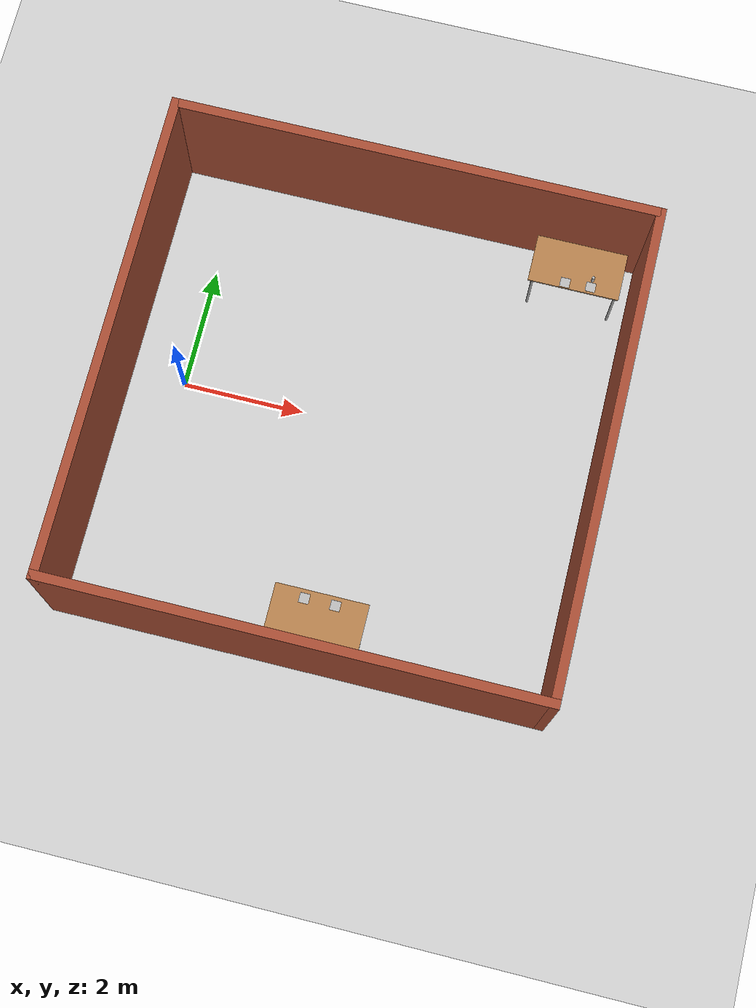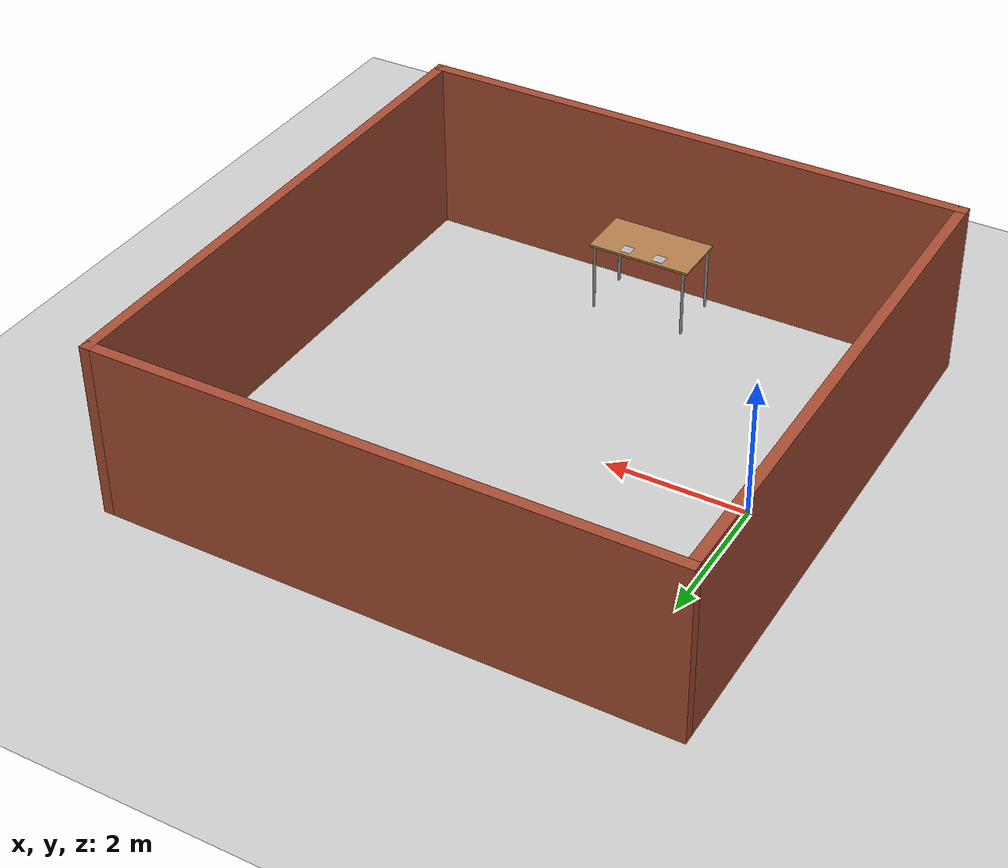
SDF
<sdf version="1.7">
 <world name="default">
  <light name="sun" type="directional">
   <pose>0 0 10 0 -0 0</pose>
   <diffuse>0.8 0.8 0.8 1</diffuse>
   <specular>0.2 0.2 0.2 1</specular>
   <attenuation>
    <range>1000</range>
    <constant>0.9</constant>
    <linear>0.01</linear>
    <quadratic>0.001</quadratic>
   </attenuation>
   <direction>-0.5 0.1 -0.9</direction>
   <spot><inner_angle>0</inner_angle><outer_angle>0</outer_angle><falloff>0</falloff></spot>
  </light>
  <model name="ground_plane">
   <static>1</static>
   <link name="link">
    <collision name="collision">
     <geometry><plane><normal>0 0 1</normal><size>100 100</size></plane></geometry>
     <surface>
      <contact><collide_bitmask>65535</collide_bitmask></contact>
      <friction><ode><mu>100</mu><mu2>50</mu2></ode></friction>
     </surface>
    </collision>
    <visual name="visual">
     <cast_shadows>0</cast_shadows>
     <geometry><plane><normal>0 0 1</normal><size>100 100</size></plane></geometry>
     <material>
      <script><uri>file://media/materials/scripts/gazebo.material</uri><name>Gazebo/Grey</name></script>
     </material>
    </visual>
   </link>
  </model>
  <gravity>0 0 -9.8</gravity>
  <magnetic_field>6e-06 2.3e-05 -4.2e-05</magnetic_field>
  <atmosphere type="adiabatic"/>
  <physics type="ode">
   <max_step_size>0.001</max_step_size>
   <real_time_factor>1</real_time_factor>
   <real_time_update_rate>1000</real_time_update_rate>
  </physics>
  <scene><ambient>0.4 0.4 0.4 1</ambient><background>0.7 0.7 0.7 1</background><shadows>1</shadows></scene>
  <spherical_coordinates>
   <surface_model>EARTH_WGS84</surface_model>
   <latitude_deg>0</latitude_deg>
   <longitude_deg>0</longitude_deg>
   <elevation>0</elevation>
   <heading_deg>0</heading_deg>
  </spherical_coordinates>
  <model name="room">
   <pose>3.0203 -0.137858 0 0 -0 0</pose>
   <link name="Wall_0">
    <collision name="Wall_0_Collision">
     <geometry><box><size>8 0.15 2.5</size></box></geometry>
     <pose>0 0 1.25 0 -0 0</pose>
    </collision>
    <visual name="Wall_0_Visual">
     <pose>0 0 1.25 0 -0 0</pose>
     <geometry><box><size>8 0.15 2.5</size></box></geometry>
     <material>
      <script><uri>file://media/materials/scripts/gazebo.material</uri><name>Gazebo/Bricks</name></script>
      <ambient>1 1 1 1</ambient>
     </material>
     <meta><layer>0</layer></meta>
    </visual>
    <pose>-3.99558 -0 0 0 -0 -1.5708</pose>
   </link>
   <link name="Wall_1">
    <collision name="Wall_1_Collision">
     <geometry><box><size>8 0.15 2.5</size></box></geometry>
     <pose>0 0 1.25 0 -0 0</pose>
    </collision>
    <visual name="Wall_1_Visual">
     <pose>0 0 1.25 0 -0 0</pose>
     <geometry><box><size>8 0.15 2.5</size></box></geometry>
     <material>
      <script><uri>file://media/materials/scripts/gazebo.material</uri><name>Gazebo/Bricks</name></script>
      <ambient>1 1 1 1</ambient>
     </material>
     <meta><layer>0</layer></meta>
    </visual>
    <pose>-0.07058 -3.925 0 0 -0 0</pose>
   </link>
   <link name="Wall_2">
    <collision name="Wall_2_Collision">
     <geometry><box><size>8 0.15 2.5</size></box></geometry>
     <pose>0 0 1.25 0 -0 0</pose>
    </collision>
    <visual name="Wall_2_Visual">
     <pose>0 0 1.25 0 -0 0</pose>
     <geometry><box><size>8 0.15 2.5</size></box></geometry>
     <material>
      <script><uri>file://media/materials/scripts/gazebo.material</uri><name>Gazebo/Bricks</name></script>
      <ambient>1 1 1 1</ambient>
     </material>
     <meta><layer>0</layer></meta>
    </visual>
    <pose>3.85442 -0 0 0 -0 1.5708</pose>
   </link>
   <link name="Wall_3">
    <collision name="Wall_3_Collision">
     <geometry><box><size>8 0.15 2.5</size></box></geometry>
     <pose>0 0 1.25 0 -0 0</pose>
    </collision>
    <visual name="Wall_3_Visual">
     <pose>0 0 1.25 0 -0 0</pose>
     <geometry><box><size>8 0.15 2.5</size></box></geometry>
     <material>
      <script><uri>file://media/materials/scripts/gazebo.material</uri><name>Gazebo/Bricks</name></script>
      <ambient>1 1 1 1</ambient>
     </material>
     <meta><layer>0</layer></meta>
    </visual>
    <pose>-0.07058 3.925 0 0 -0 3.14159</pose>
   </link>
   <static>1</static>
  </model>
  <model name="table">
   <static>1</static>
   <link name="link">
    <collision name="surface">
     <pose>0 0 1 0 -0 0</pose>
     <geometry><box><size>1.5 0.8 0.03</size></box></geometry>
     <surface><friction><ode><mu>0.6</mu><mu2>0.6</mu2></ode></friction></surface>
    </collision>
    <visual name="visual1">
     <pose>0 0 1 0 -0 0</pose>
     <geometry><box><size>1.5 0.8 0.03</size></box></geometry>
     <material>
      <script><uri>file://media/materials/scripts/gazebo.material</uri><name>Gazebo/Wood</name></script>
     </material>
    </visual>
    <collision name="front_left_leg">
     <pose>0.68 0.38 0.5 0 -0 0</pose>
     <geometry><cylinder><radius>0.02</radius><length>1</length></cylinder></geometry>
    </collision>
    <visual name="front_left_leg">
     <pose>0.68 0.38 0.5 0 -0 0</pose>
     <geometry><cylinder><radius>0.02</radius><length>1</length></cylinder></geometry>
     <material>
      <script><uri>file://media/materials/scripts/gazebo.material</uri><name>Gazebo/Grey</name></script>
     </material>
    </visual>
    <collision name="front_right_leg">
     <pose>0.68 -0.38 0.5 0 -0 0</pose>
     <geometry><cylinder><radius>0.02</radius><length>1</length></cylinder></geometry>
    </collision>
    <visual name="front_right_leg">
     <pose>0.68 -0.38 0.5 0 -0 0</pose>
     <geometry><cylinder><radius>0.02</radius><length>1</length></cylinder></geometry>
     <material>
      <script><uri>file://media/materials/scripts/gazebo.material</uri><name>Gazebo/Grey</name></script>
     </material>
    </visual>
    <collision name="back_right_leg">
     <pose>-0.68 -0.38 0.5 0 -0 0</pose>
     <geometry><cylinder><radius>0.02</radius><length>1</length></cylinder></geometry>
    </collision>
    <visual name="back_right_leg">
     <pose>-0.68 -0.38 0.5 0 -0 0</pose>
     <geometry><cylinder><radius>0.02</radius><length>1</length></cylinder></geometry>
     <material>
      <script><uri>file://media/materials/scripts/gazebo.material</uri><name>Gazebo/Grey</name></script>
     </material>
    </visual>
    <collision name="back_left_leg">
     <pose>-0.68 0.38 0.5 0 -0 0</pose>
     <geometry><cylinder><radius>0.02</radius><length>1</length></cylinder></geometry>
    </collision>
    <visual name="back_left_leg">
     <pose>-0.68 0.38 0.5 0 -0 0</pose>
     <geometry><cylinder><radius>0.02</radius><length>1</length></cylinder></geometry>
     <material>
      <script><uri>file://media/materials/scripts/gazebo.material</uri><name>Gazebo/Grey</name></script>
     </material>
    </visual>
   </link>
   <pose>5.85131 3.17866 0 0 -0 0</pose>
  </model>
  <model name="table_0">
   <static>1</static>
   <link name="link">
    <collision name="surface">
     <pose>0 0 1 0 -0 0</pose>
     <geometry><box><size>1.5 0.8 0.03</size></box></geometry>
     <surface><friction><ode><mu>0.6</mu><mu2>0.6</mu2></ode></friction></surface>
    </collision>
    <visual name="visual1">
     <pose>0 0 1 0 -0 0</pose>
     <geometry><box><size>1.5 0.8 0.03</size></box></geometry>
     <material>
      <script><uri>file://media/materials/scripts/gazebo.material</uri><name>Gazebo/Wood</name></script>
     </material>
    </visual>
    <collision name="front_left_leg">
     <pose>0.68 0.38 0.5 0 -0 0</pose>
     <geometry><cylinder><radius>0.02</radius><length>1</length></cylinder></geometry>
    </collision>
    <visual name="front_left_leg">
     <pose>0.68 0.38 0.5 0 -0 0</pose>
     <geometry><cylinder><radius>0.02</radius><length>1</length></cylinder></geometry>
     <material>
      <script><uri>file://media/materials/scripts/gazebo.material</uri><name>Gazebo/Grey</name></script>
     </material>
    </visual>
    <collision name="front_right_leg">
     <pose>0.68 -0.38 0.5 0 -0 0</pose>
     <geometry><cylinder><radius>0.02</radius><length>1</length></cylinder></geometry>
    </collision>
    <visual name="front_right_leg">
     <pose>0.68 -0.38 0.5 0 -0 0</pose>
     <geometry><cylinder><radius>0.02</radius><length>1</length></cylinder></geometry>
     <material>
      <script><uri>file://media/materials/scripts/gazebo.material</uri><name>Gazebo/Grey</name></script>
     </material>
    </visual>
    <collision name="back_right_leg">
     <pose>-0.68 -0.38 0.5 0 -0 0</pose>
     <geometry><cylinder><radius>0.02</radius><length>1</length></cylinder></geometry>
    </collision>
    <visual name="back_right_leg">
     <pose>-0.68 -0.38 0.5 0 -0 0</pose>
     <geometry><cylinder><radius>0.02</radius><length>1</length></cylinder></geometry>
     <material>
      <script><uri>file://media/materials/scripts/gazebo.material</uri><name>Gazebo/Grey</name></script>
     </material>
    </visual>
    <collision name="back_left_leg">
     <pose>-0.68 0.38 0.5 0 -0 0</pose>
     <geometry><cylinder><radius>0.02</radius><length>1</length></cylinder></geometry>
    </collision>
    <visual name="back_left_leg">
     <pose>-0.68 0.38 0.5 0 -0 0</pose>
     <geometry><cylinder><radius>0.02</radius><length>1</length></cylinder></geometry>
     <material>
      <script><uri>file://media/materials/scripts/gazebo.material</uri><name>Gazebo/Grey</name></script>
     </material>
    </visual>
   </link>
   <pose>3.13284 -3.43742 0 0 -0 0</pose>
  </model>
  <model name="biscuits_pack">
   <static>0</static>
   <link name="link">
    <inertial>
     <mass>0.01</mass>
     <inertia><ixx>0.001</ixx><ixy>0</ixy><ixz>0</ixz><iyy>0.001</iyy><iyz>0</iyz><izz>0.001</izz></inertia>
    </inertial>
    <collision name="collision">
     <geometry><cylinder><radius>0.025</radius><length>0.15</length></cylinder></geometry>
     <surface>
      <contact><ode><min_depth>0.005</min_depth></ode></contact>
      <friction><ode><mu>0.8</mu><mu2>0.8</mu2></ode></friction>
     </surface>
    </collision>
    <visual name="visual">
     <geometry><cylinder><radius>0.025</radius><length>0.15</length></cylinder></geometry>
     <material>
      <script>
       <uri>model://biscuits_pack/material/scripts</uri>
       <uri>model://biscuits_pack/material/textures</uri>
       <name>Custom/biscuits_pack</name>
      </script>
     </material>
    </visual>
   </link>
   <pose>6.1245 2.97787 1.16 -7e-06 4.8e-05 -0.000852</pose>
  </model>
  <model name="aruco_marker_250_6x6_1">
   <static>0</static>
   <link name="marker">
    <inertial>
     <mass>0.1</mass>
     <inertia><ixx>0</ixx><ixy>0</ixy><ixz>0</ixz><iyy>0</iyy><iyz>0</iyz><izz>0</izz></inertia>
    </inertial>
    <visual name="visual">
     <pose>0 0 0 0 -0 1.57</pose>
     <geometry><box><size>0.16 0.16 0.001</size></box></geometry>
     <material>
      <script>
       <uri>model://aruco_marker_250_6x6_1/material/scripts</uri>
       <uri>model://aruco_marker_250_6x6_1/material/textures</uri>
       <name>Aruco/aruco_marker_250_6x6_1</name>
      </script>
     </material>
    </visual>
    <collision name="collision"><geometry><box><size>0.16 0.16 0.001</size></box></geometry></collision>
    <self_collide>1</self_collide>
   </link>
   <pose>6.12082 2.89442 1.01534 3e-06 -6e-06 0</pose>
  </model>
  <model name="aruco_marker_250_6x6_2">
   <static>0</static>
   <link name="marker">
    <inertial>
     <mass>0.1</mass>
     <inertia><ixx>0</ixx><ixy>0</ixy><ixz>0</ixz><iyy>0</iyy><iyz>0</iyz><izz>0</izz></inertia>
    </inertial>
    <visual name="visual">
     <pose>0 0 0 0 -0 1.57</pose>
     <geometry><box><size>0.16 0.16 0.001</size></box></geometry>
     <material>
      <script>
       <uri>model://aruco_marker_250_6x6_2/material/scripts</uri>
       <uri>model://aruco_marker_250_6x6_2/material/textures</uri>
       <name>Aruco/aruco_marker_250_6x6_2</name>
      </script>
     </material>
    </visual>
    <collision name="collision"><geometry><box><size>0.16 0.16 0.001</size></box></geometry></collision>
    <self_collide>1</self_collide>
   </link>
   <pose>5.70032 2.87306 1.01533 8e-06 -9e-06 0.000129</pose>
  </model>
  <model name="aruco_marker_250_6x6_1_0">
   <static>0</static>
   <link name="marker">
    <inertial>
     <mass>0.1</mass>
     <inertia><ixx>0</ixx><ixy>0</ixy><ixz>0</ixz><iyy>0</iyy><iyz>0</iyz><izz>0</izz></inertia>
    </inertial>
    <visual name="visual">
     <pose>0 0 0 0 -0 1.57</pose>
     <geometry><box><size>0.16 0.16 0.001001</size></box></geometry>
     <material>
      <script>
       <uri>model://aruco_marker_250_6x6_1/material/scripts</uri>
       <uri>model://aruco_marker_250_6x6_1/material/textures</uri>
       <name>Aruco/aruco_marker_250_6x6_1</name>
      </script>
     </material>
    </visual>
    <collision name="collision"><geometry><box><size>0.16 0.16 0.001001</size></box></geometry></collision>
    <self_collide>1</self_collide>
   </link>
   <pose>3.37153 -3.17732 1.01535 1.1e-05 -5e-06 0</pose>
  </model>
  <model name="aruco_marker_250_6x6_2_0">
   <static>0</static>
   <link name="marker">
    <inertial>
     <mass>0.1</mass>
     <inertia><ixx>0</ixx><ixy>0</ixy><ixz>0</ixz><iyy>0</iyy><iyz>0</iyz><izz>0</izz></inertia>
    </inertial>
    <visual name="visual">
     <pose>0 0 0 0 -0 1.57</pose>
     <geometry><box><size>0.16 0.16 0.000999</size></box></geometry>
     <material>
      <script>
       <uri>model://aruco_marker_250_6x6_2/material/scripts</uri>
       <uri>model://aruco_marker_250_6x6_2/material/textures</uri>
       <name>Aruco/aruco_marker_250_6x6_2</name>
      </script>
     </material>
    </visual>
    <collision name="collision"><geometry><box><size>0.16 0.16 0.000999</size></box></geometry></collision>
    <self_collide>1</self_collide>
   </link>
   <pose>2.87714 -3.17732 1.01534 -1e-06 8e-06 -0</pose>
  </model>
 </world>
</sdf>
